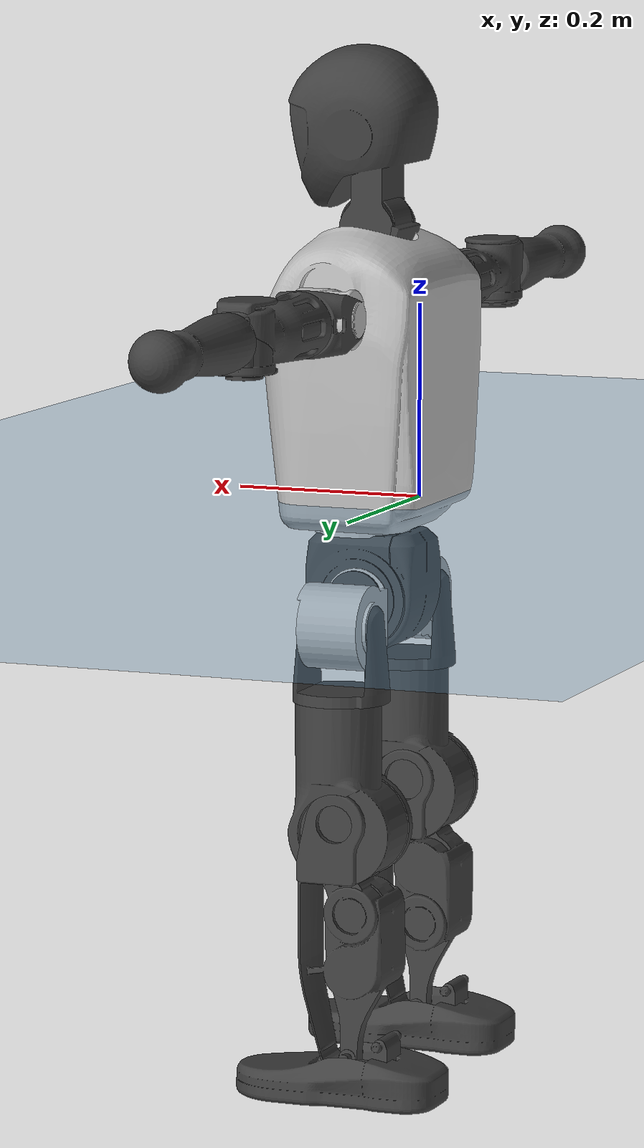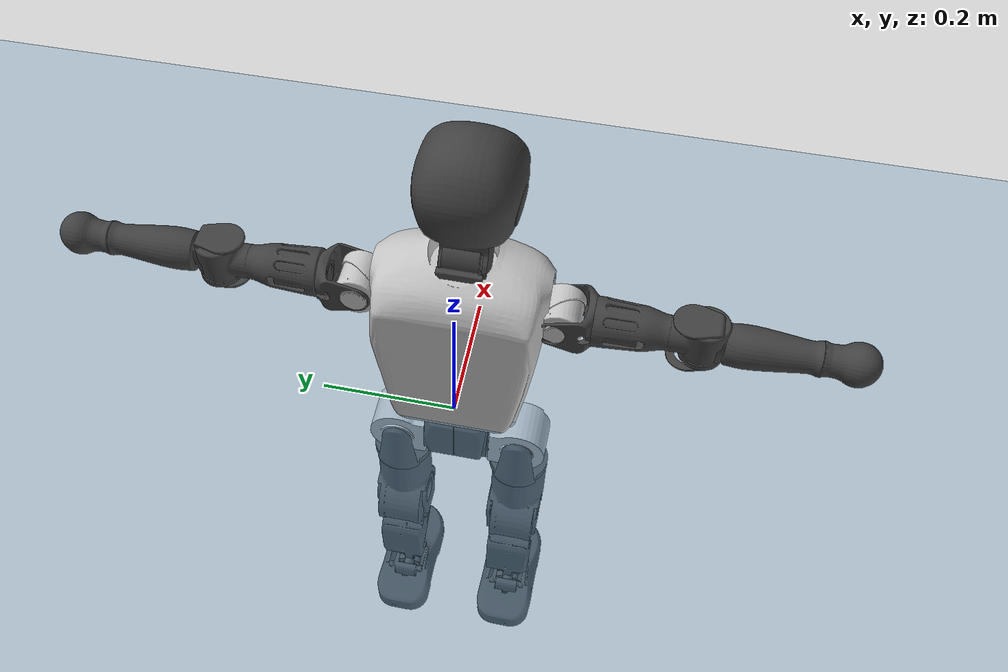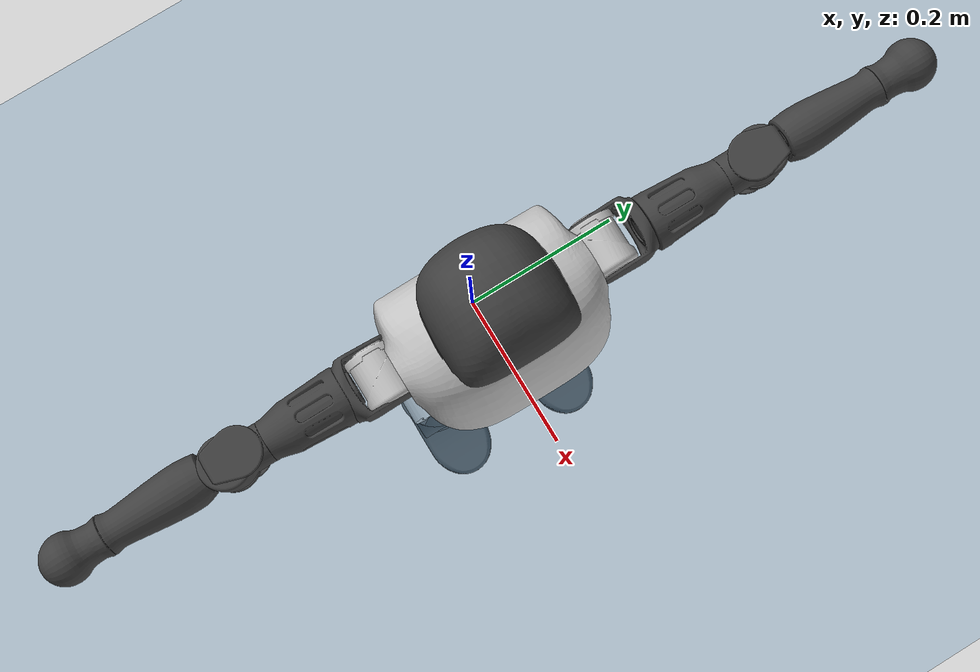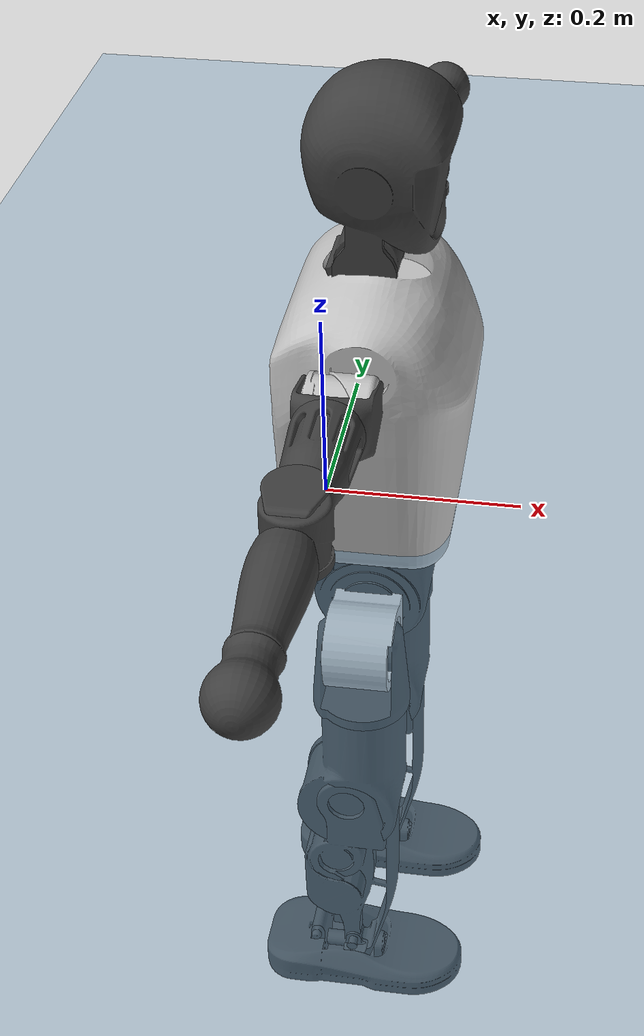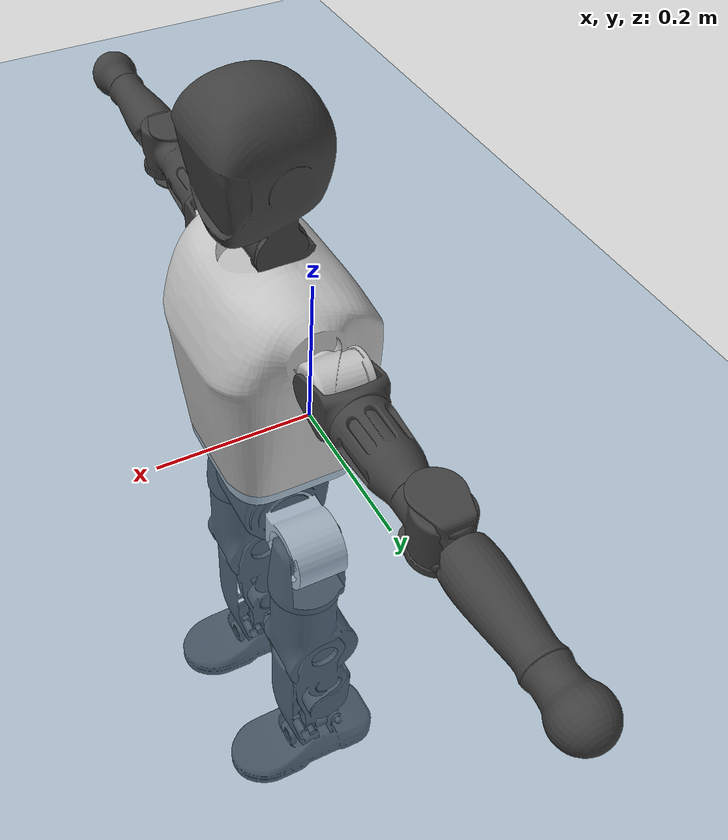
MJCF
<mujoco model="T1">
  <compiler angle="radian" assetdir="assets" balanceinertia="true" inertiafromgeom="false"/>

  <option timestep="0.005" density="1.2" viscosity="2e-05"/>

  <size nkey="1"/>

  <visual>
    <quality shadowsize="8192"/>
    <map shadowclip="0.5"/>
  </visual>

  <default>
    <default class="/">
      <joint armature="0.01" damping="0.01" frictionloss="0.1"/>
      <geom contype="0" conaffinity="0" group="1" solref="-1000 -80"/>
      <site size="0.01 0.005 0.005" group="5"/>
      <general forcelimited="true" biastype="affine" gainprm="25" biasprm="0 -25 -0.6"/>
      <default class="t1">
        <geom rgba="0.25 0.25 0.25 1"/>
        <default class="visual">
          <geom type="mesh" group="2"/>
        </default>
        <default class="collision">
          <geom group="3"/>
        </default>
        <default class="foot">
          <geom size="0.1115 0.05 0.015" type="box" condim="6" group="4" priority="1" solimp="0.015 1 0.015"/>
        </default>
        <default class="reward_collision_sphere">
          <geom group="5" rgba="1 0 0 1"/>
        </default>
      </default>
    </default>
  </default>

  <asset>
    <texture type="skybox" colorspace="auto" name="//unnamed_texture_0" builtin="gradient" rgb1="0.95 0.95 0.95" rgb2="0.95 0.95 0.95" width="100" height="600"/>
    <texture type="2d" colorspace="auto" name="texplane" builtin="checker" rgb1="0.345 0.575 0.748" rgb2="0.345 0.575 0.748" markrgb="1 1 1" width="512" height="512"/>
    <material name="MatPlane" class="/" texture="texplane" texuniform="true" texrepeat="2 2" specular="0.9"/>
    <mesh name="Trunk" class="/" file="Trunk.stl"/>
    <mesh name="H1" class="/" file="H1.stl"/>
    <mesh name="H2" class="/" file="H2.stl"/>
    <mesh name="AL1" class="/" file="AL1.stl"/>
    <mesh name="AL2" class="/" file="AL2.stl"/>
    <mesh name="AL3" class="/" file="AL3.stl"/>
    <mesh name="left_hand_link" class="/" file="left_hand_link.stl"/>
    <mesh name="AR1" class="/" file="AR1.stl"/>
    <mesh name="AR2" class="/" file="AR2.stl"/>
    <mesh name="AR3" class="/" file="AR3.stl"/>
    <mesh name="right_hand_link" class="/" file="right_hand_link.stl"/>
    <mesh name="Waist" class="/" file="Waist.stl"/>
    <mesh name="Hip_Pitch_Left" class="/" file="Hip_Pitch_Left.stl"/>
    <mesh name="Hip_Roll_Left" class="/" file="Hip_Roll_Left.stl"/>
    <mesh name="Hip_Yaw_Left" class="/" file="Hip_Yaw_Left.stl"/>
    <mesh name="Shank_Left" class="/" file="Shank_Left.stl"/>
    <mesh name="Ankle_Cross_Left" class="/" file="Ankle_Cross_Left.stl"/>
    <mesh name="left_foot_link" class="/" file="left_foot_link.stl"/>
    <mesh name="Hip_Pitch_Right" class="/" file="Hip_Pitch_Right.stl"/>
    <mesh name="Hip_Roll_Right" class="/" file="Hip_Roll_Right.stl"/>
    <mesh name="Hip_Yaw_Right" class="/" file="Hip_Yaw_Right.stl"/>
    <mesh name="Shank_Right" class="/" file="Shank_Right.stl"/>
    <mesh name="Ankle_Cross_Right" class="/" file="Ankle_Cross_Right.stl"/>
    <mesh name="right_foot_link" class="/" file="right_foot_link.stl"/>
  </asset>

  <worldbody>
    <geom name="floor" class="/" size="100 100 0.125" type="plane" group="0" material="MatPlane"/>
    <light name="toplight_shadow" class="/" pos="0 0 5" dir="0.0990148 0.0990148 -0.990148" type="directional" ambient="0.04 0.04 0.04" diffuse="0.55 0.55 0.55" specular="0.12 0.12 0.12"/>
    <light name="toplight_fill" class="/" pos="0 0 5" dir="0.0990148 0.0990148 -0.990148" type="directional" castshadow="false" ambient="0.04 0.04 0.04" diffuse="0.3 0.3 0.3" specular="0.08 0.08 0.08"/>
    <body name="trunk" childclass="t1" pos="3.86096e-05 4.87243e-05 0.00270066" quat="1 2.36163e-05 -0.000389676 0.00019153">
      <inertial pos="0.044872 0.00032818 0.0947611" quat="0.9999 -0.00194019 -0.0131889 -0.00463027" mass="7.36955" diaginertia="0.0319648 0.0430373 0.0310602"/>
      <joint name="//unnamed_joint_0" type="free" armature="0" damping="0" frictionloss="0"/>
      <geom name="//unnamed_geom_1" class="visual" rgba="0.76 0.76 0.76 1" mesh="Trunk"/>
      <geom name="//unnamed_geom_2" class="collision" size="0.0651621 0.0868828 0.130324" pos="0.0489627 0 0.107713" type="box"/>
      <geom name="//unnamed_geom_3" class="reward_collision_sphere" size="0.0999152" pos="0.0489627 0 0.0897612"/>
      <geom name="//unnamed_geom_4" class="reward_collision_sphere" size="0.0130324" pos="0.0489627 0.0758903 0"/>
      <geom name="//unnamed_geom_5" class="reward_collision_sphere" size="0.0130324" pos="0.0489627 -0.0758903 0"/>
      <geom name="//unnamed_geom_6" class="reward_collision_sphere" size="0.0130324" pos="0.0489627 0.0955325 0.16157"/>
      <geom name="//unnamed_geom_7" class="reward_collision_sphere" size="0.0130324" pos="0.0489627 -0.0955325 0.16157"/>
      <site name="imu" pos="0.012095 -0.0137578 0.00338109" size="0.00868828"/>
      <camera name="track" pos="0 -1.78565 0" quat="0.707107 0.707107 0 0" mode="trackcom"/>
      <camera name="ego_camera" pos="0.0995575 0 0.376997" quat="-0.5 -0.5 0.5 0.5"/>
      <body name="H1" pos="0.0492649 -0.00232488 0.217589" quat="1 -7.17143e-05 0.000106679 -0.000771448">
        <inertial pos="-0.00129191 -0.000493325 0.0525615" quat="0.762907 -0.0134566 0.000798997 0.646367" mass="0.291457" diaginertia="9.09788e-05 0.000126602 9.06943e-05"/>
        <joint name="AAHead_yaw" pos="0 0 0" axis="0.00100759 -5.29118e-05 0.999999" stiffness="0.0125002" range="-1.55918 1.60951" armature="0.00841174" damping="0.00665871" frictionloss="0.0892197"/>
        <geom name="//unnamed_geom_8" class="visual" mesh="H1"/>
        <body name="H2" pos="-0.000235083 -0.00278954 0.0562756" quat="1 -7.93334e-05 0.000208521 -6.18999e-06">
          <inertial pos="0.00812957 0.00351926 0.0905636" quat="0.988423 0.106329 -0.0746582 -0.078361" mass="0.427673" diaginertia="0.00074162 0.00109694 0.00102055"/>
          <joint name="Head_pitch" pos="0 0 0" axis="6.73082e-05 -0.999995 -0.00319618" stiffness="0.00392296" range="-1.22274 0.39447" armature="0.00750725" damping="0" frictionloss="0.0874343"/>
          <geom name="//unnamed_geom_9" class="visual" mesh="H2"/>
          <geom name="//unnamed_geom_10" class="collision" size="0.0695062" pos="0.00816045 0 0.0987373"/>
          <geom name="//unnamed_geom_11" class="reward_collision_sphere" size="0.0781945" pos="0.0163209 0 0.0897612"/>
        </body>
      </body>
      <body name="AL1" pos="0.0466864 0.0957657 0.195047" quat="1 0.000102919 0.00061717 -8.78373e-05">
        <inertial pos="0.00029394 0.0411157 0.00259671" quat="0.498405 0.495696 -0.50848 0.497318" mass="0.353757" diaginertia="0.000504759 0.000740733 0.000173436"/>
        <joint name="Left_Shoulder_Pitch" pos="0 0 0" axis="-0.00160283 0.999994 0.00310028" range="-3.36394 1.17337" armature="0.0082544" damping="0.00213879" frictionloss="0.088378"/>
        <geom name="//unnamed_geom_12" class="visual" rgba="0.76 0.76 0.76 1" mesh="AL1"/>
        <body name="AL2" pos="0.00101495 0.0456135 -0.000928221" quat="0.999999 -0.000591694 -0.00051407 0.00104424">
          <inertial pos="0.00402082 0.0331632 -0.00276492" quat="0.491105 0.508026 -0.48675 0.513614" mass="0.111482" diaginertia="0.000150874 0.000209263 0.000107713"/>
          <joint name="Left_Shoulder_Roll" pos="0 0 0" axis="-1 2.58667e-05 0.000162747" range="-1.618 1.75538" armature="0.00929786" damping="0" frictionloss="0.0858867"/>
          <geom name="//unnamed_geom_13" class="visual" mesh="AL2"/>
          <body name="AL3" pos="0.00342348 0.0573722 0.000421389" quat="0.999999 -0.000535997 0.000828721 -0.000271661">
            <inertial pos="-0.00152935 0.0756664 0.000325828" quat="0.701997 0.712074 -0.0102519 -0.00674196" mass="0.690191" diaginertia="0.00483296 0.00750679 0.000367883"/>
            <joint name="Left_Elbow_Pitch" pos="0 0 0" axis="-0.00232408 -0.999997 -0.000542251" range="-2.29582 2.28144" armature="0.00884192" damping="0.0105309" frictionloss="0.0893415"/>
            <geom name="//unnamed_geom_14" class="visual" mesh="AL3"/>
            <geom name="//unnamed_geom_15" class="collision" size="0.0260648 0.0651621" pos="0 0.0446413 0" quat="0.707105 0.707108 0 0" type="cylinder"/>
            <geom name="//unnamed_geom_16" class="reward_collision_sphere" size="0.0312778"/>
            <body name="left_hand_link" pos="0.000559922 0.134141 0.00334712" quat="0.999999 -0.000287983 0.0013169 9.69768e-05">
              <inertial pos="-2.77911e-06 0.0969615 -0.00216925" quat="0.700958 0.713134 -0.00823621 -0.00544858" mass="0.207849" diaginertia="0.00292189 0.00450578 0.000119782"/>
              <joint name="Left_Elbow_Yaw" pos="0 0 0" axis="-0.00241966 -0.0160644 0.999868" stiffness="0.000610764" range="-2.44854 0.0500282" armature="0.00878246" damping="0.00158214" frictionloss="0.0973831"/>
              <geom name="//unnamed_geom_17" class="visual" mesh="left_hand_link"/>
              <geom name="//unnamed_geom_18" class="collision" size="0.0260648 0.0760225" pos="0 0.116068 0" quat="0.707105 0.707108 0 0" type="cylinder"/>
              <geom name="//unnamed_geom_19" class="reward_collision_sphere" size="0.0434414"/>
              <geom name="//unnamed_geom_20" class="reward_collision_sphere" size="0.030409" pos="0 0.098211 0"/>
              <geom name="//unnamed_geom_21" class="reward_collision_sphere" size="0.030409" pos="0 0.191958 0"/>
            </body>
          </body>
        </body>
      </body>
      <body name="AR1" pos="0.0439882 -0.0913792 0.195782" quat="1 -0.000394147 0.000264591 0.000297828">
        <inertial pos="-0.00138231 -0.0395776 -0.00131903" quat="0.504221 0.495815 -0.503071 0.496838" mass="0.356453" diaginertia="0.000500419 0.000747895 0.000171485"/>
        <joint name="Right_Shoulder_Pitch" pos="0 0 0" axis="0.000365434 -0.999971 -0.00763714" stiffness="0.0156644" range="-1.17514 3.33199" armature="0.00855261" damping="0.0214909" frictionloss="0.0882123"/>
        <geom name="//unnamed_geom_22" class="visual" rgba="0.76 0.76 0.76 1" mesh="AR1"/>
        <body name="AR2" pos="-0.00278202 -0.0385265 0.000466274" quat="1 -0.000779974 0.000165189 -0.000310914">
          <inertial pos="0.000912158 -0.0333114 -0.00218305" quat="0.506592 0.490786 -0.508228 0.494163" mass="0.104149" diaginertia="0.000140995 0.000191333 0.000104246"/>
          <joint name="Right_Shoulder_Roll" pos="0 0 0" axis="-0.999968 0.00161185 -0.00784498" stiffness="0.0113863" range="-1.71006 1.51823" armature="0.0089263" damping="0.00700047" frictionloss="0.0750888"/>
          <geom name="//unnamed_geom_23" class="visual" mesh="AR2"/>
          <body name="AR3" pos="-0.00162942 -0.0515888 0.00255069" quat="1 -0.000283972 0.000241885 -0.000217536">
            <inertial pos="-0.000496075 -0.0755543 -1.29352e-05" quat="0.71371 0.700402 -0.00531241 -0.00511294" mass="0.654892" diaginertia="0.00455563 0.00744233 0.000364296"/>
            <joint name="Right_Elbow_Pitch" pos="0 0 0" axis="-3.07653e-05 1 -7.34605e-05" stiffness="0.0116029" range="-2.27143 2.26121" armature="0.0091458" damping="0.0161889" frictionloss="0.0982245"/>
            <geom name="//unnamed_geom_24" class="visual" mesh="AR3"/>
            <geom name="//unnamed_geom_25" class="collision" size="0.0260648 0.0651621" pos="0 -0.0446413 0" quat="0.707105 0.707108 0 0" type="cylinder"/>
            <geom name="//unnamed_geom_26" class="reward_collision_sphere" size="0.0312778"/>
            <body name="right_hand_link" pos="-0.00289414 -0.129729 -0.000721488" quat="1 -0.000909824 0.00012964 -0.000123472">
              <inertial pos="-0.00101102 -0.0977853 0.00334263" quat="0.701582 0.712492 -0.0100769 -0.00598834" mass="0.205061" diaginertia="0.0027799 0.00449847 0.000121738"/>
              <joint name="Right_Elbow_Yaw" pos="0 0 0" axis="0.00336066 0.00186026 0.999993" stiffness="0.00432934" range="-0.0550174 2.42034" armature="0.00987917" damping="0.0103546" frictionloss="0.0877999"/>
              <geom name="//unnamed_geom_27" class="visual" mesh="right_hand_link"/>
              <geom name="//unnamed_geom_28" class="collision" size="0.0260648 0.0760225" pos="0 -0.116068 0" quat="0.707105 0.707108 0 0" type="cylinder"/>
              <geom name="//unnamed_geom_29" class="reward_collision_sphere" size="0.0434414"/>
              <geom name="//unnamed_geom_30" class="reward_collision_sphere" size="0.030409" pos="0 -0.098211 0"/>
              <geom name="//unnamed_geom_31" class="reward_collision_sphere" size="0.030409" pos="0 -0.191958 0"/>
            </body>
          </body>
        </body>
      </body>
      <body name="Waist" pos="0.0513935 -0.000494333 -0.106214" quat="1 -5.13436e-05 -4.27467e-05 -1.41855e-05">
        <inertial pos="0.00399165 -0.00101137 0.00591308" quat="0.982794 0.00105054 -0.184694 0.00151017" mass="1.68216" diaginertia="0.00187719 0.00280867 0.00263401"/>
        <joint name="Waist" pos="0 0 0" axis="6.93338e-06 0.00189434 0.999998" range="-1.52279 1.58542" armature="0.00760664" damping="0.0130346" frictionloss="0.0905001"/>
        <geom name="//unnamed_geom_32" class="visual" mesh="Waist"/>
        <body name="Hip_Pitch_Left" pos="-0.00169875 0.0967361 -0.00100005" quat="0.999999 0.000835307 -0.000688031 0.000477098">
          <inertial pos="-0.000782584 -0.00420708 -0.0161269" quat="0.974961 0.221975 0.0131544 0.00223755" mass="0.659313" diaginertia="0.000639949 0.000827961 0.000712775"/>
          <joint name="Left_Hip_Pitch" pos="0 0 0" axis="4.52443e-05 1 6.49964e-05" stiffness="0.0107674" range="-1.8048 1.61794" armature="0.00876135" damping="0.0162719" frictionloss="0.0866044"/>
          <geom name="//unnamed_geom_33" class="visual" rgba="0.76 0.76 0.76 1" mesh="Hip_Pitch_Left"/>
          <body name="Hip_Roll_Left" pos="0.00137018 -0.000388431 -0.0204154" quat="0.999999 -0.00089931 0.000204113 0.000654171">
            <inertial pos="0.000121929 -0.000284745 -0.0479102" quat="0.707321 -0.00648234 -0.00340583 0.706855" mass="0.253186" diaginertia="0.000636004 0.000835912 0.000291184"/>
            <joint name="Left_Hip_Roll" pos="0 0 0" axis="-0.999999 0.000812314 0.00151675" range="-1.57791 0.208178" armature="0.00853211" damping="0.0162021" frictionloss="0.0986406"/>
            <geom name="//unnamed_geom_34" class="visual" mesh="Hip_Roll_Left"/>
            <geom name="//unnamed_geom_35" class="reward_collision_sphere" size="0.0477855"/>
            <body name="Hip_Yaw_Left" pos="0.000709973 -1.87104e-05 -0.0757034" quat="1 -0.000450632 0.000547935 -0.000698356">
              <inertial pos="-0.004879 -0.00102603 -0.0807169" quat="0.692862 -0.0276455 -0.0406119 0.719395" mass="1.39785" diaginertia="0.00919155 0.013932 0.00154086"/>
              <joint name="Left_Hip_Yaw" pos="0 0 0" axis="-0.00315506 0.0113206 -0.999931" range="-0.997885 0.979078" armature="0.00848432" damping="0.0108876" frictionloss="0.0868832"/>
              <geom name="//unnamed_geom_36" class="visual" mesh="Hip_Yaw_Left"/>
              <geom name="//unnamed_geom_37" class="collision" size="0.0434414 0.0695062" type="cylinder"/>
              <body name="Shank_Left" pos="-0.0116514 -0.000182659 -0.122344" quat="1 7.05702e-05 -0.000597683 -0.000482897">
                <inertial pos="-0.00532919 0.000763893 -0.11226" quat="0.996935 -0.00511328 -0.0346492 0.0699522" mass="1.15608" diaginertia="0.0124336 0.0203909 0.00110491"/>
                <joint name="Left_Knee_Pitch" pos="0 0 0" axis="-0.00159898 0.999999 0.000207717" stiffness="0.00364223" range="0.00754805 2.34823" armature="0.00860249" damping="0.0159339" frictionloss="0.0989759"/>
                <geom name="//unnamed_geom_38" class="visual" mesh="Shank_Left"/>
                <geom name="//unnamed_geom_39" class="collision" size="0.0434414 0.0651621" pos="0 0 -0.107713" type="cylinder"/>
                <geom name="//unnamed_geom_40" class="reward_collision_sphere" size="0.0564738"/>
                <body name="Ankle_Cross_Left" pos="-0.00144034 -0.000990653 -0.25295" quat="1 0.000385835 0.000714093 0.000514016">
                  <inertial pos="-0.00190105 0.00155867 -0.00959335" quat="0.442806 0.551289 0.550232 0.444128" mass="0.0488461" diaginertia="1.12274e-05 1.46072e-05 6.66966e-06"/>
                  <joint name="Left_Ankle_Pitch" pos="0 0 0" axis="-0.00459176 0.999957 -0.00804275" range="-0.913787 0.388095" armature="0.00795516" damping="0.0127386" frictionloss="0.0988877"/>
                  <geom name="//unnamed_geom_41" class="visual" mesh="Ankle_Cross_Left"/>
                  <body name="left_foot_link" pos="0.00199711 -0.000238143 -0.0142581" quat="1 -3.325e-05 0.000118334 -6.46169e-05">
                    <inertial pos="-0.000275487 -0.00266439 -0.00898342" quat="0.00135933 0.620376 -0.0010982 0.784303" mass="0.44359" diaginertia="0.00100964 0.00136076 0.00127732"/>
                    <joint name="Left_Ankle_Roll" pos="0 0 0" axis="-0.999993 -0.00299 0.00232936" range="-0.484676 0.427985" armature="0.00864125" damping="0.00848282" frictionloss="0.0828875"/>
                    <geom name="//unnamed_geom_42" class="visual" mesh="left_foot_link"/>
                    <geom name="left_foot" class="foot" size="0.0987922 0.0436235 0.0142147" pos="0.00816045 0 -0.0134642"/>
                    <geom name="//unnamed_geom_44" class="reward_collision_sphere" size="0.0451791" pos="0.00816045 0 -0.0134642"/>
                    <geom name="//unnamed_geom_45" class="reward_collision_sphere" size="0.0260648" pos="0.0775243 -0.020535 -0.0134642"/>
                    <geom name="//unnamed_geom_46" class="reward_collision_sphere" size="0.0260648" pos="-0.0571231 -0.020535 -0.0134642"/>
                    <site name="left_foot" class="foot" pos="0.00816045 0 -0.0134642" size="0.00868828"/>
                  </body>
                </body>
              </body>
            </body>
          </body>
        </body>
        <body name="Hip_Pitch_Right" pos="-0.000254973 -0.0955312 0.00191522" quat="0.999999 -0.000807173 -0.000891541 -2.00768e-05">
          <inertial pos="0.000433327 0.00663137 -0.0133462" quat="0.971782 -0.234928 0.013645 -0.0162037" mass="0.666214" diaginertia="0.000648967 0.000828281 0.000748158"/>
          <joint name="Right_Hip_Pitch" pos="0 0 0" axis="-0.00330046 -0.999917 0.0124366" range="-1.58002 1.81646" armature="0.00979491" damping="0.0110828" frictionloss="0.0947567"/>
          <geom name="//unnamed_geom_47" class="visual" rgba="0.76 0.76 0.76 1" mesh="Hip_Pitch_Right"/>
          <body name="Hip_Roll_Right" pos="0.00116163 -0.00110395 -0.0156895" quat="0.999999 0.00094457 0.000696033 -0.000260906">
            <inertial pos="0.00370583 -0.000198834 -0.0504705" quat="0.71326 -0.0162438 -0.00602774 0.700685" mass="0.244329" diaginertia="0.000591588 0.00082651 0.000289202"/>
            <joint name="Right_Hip_Roll" pos="0 0 0" axis="-0.99999 0.0042302 0.00174943" stiffness="0.00891639" range="-0.192216 1.62762" armature="0.00836602" damping="0.00454285" frictionloss="0.0865824"/>
            <geom name="//unnamed_geom_48" class="visual" mesh="Hip_Roll_Right"/>
            <geom name="//unnamed_geom_49" class="reward_collision_sphere" size="0.0477855"/>
            <body name="Hip_Yaw_Right" pos="7.82415e-05 -0.00249548 -0.0728766" quat="0.999999 -0.000150006 0.00144729 -0.000404453">
              <inertial pos="-0.00310416 0.000711325 -0.0802544" quat="0.712755 -0.02033 -0.0327141 0.700355" mass="1.48011" diaginertia="0.00997091 0.015287 0.00159145"/>
              <joint name="Right_Hip_Yaw" pos="0 0 0" axis="0.00477979 -0.00551464 -0.999973" range="-1.01904 0.960573" armature="0.00883938" damping="0.00664101" frictionloss="0.0751089"/>
              <geom name="//unnamed_geom_50" class="visual" mesh="Hip_Yaw_Right"/>
              <geom name="//unnamed_geom_51" class="collision" size="0.0434414 0.0695062" type="cylinder"/>
              <body name="Shank_Right" pos="-0.0139595 0.00197955 -0.121312" quat="0.999999 -0.000193494 -0.000897277 -0.00090088">
                <inertial pos="-0.00209839 0.00149606 -0.108884" quat="0.999224 -0.00262133 -0.0230343 -0.0318499" mass="1.22562" diaginertia="0.0127539 0.0194054 0.00112217"/>
                <joint name="Right_Knee_Pitch" pos="0 0 0" axis="-0.00299666 -0.999992 0.00260907" stiffness="0.00756647" range="-2.33004 -0.0114408" armature="0.0083968" damping="0.0186867" frictionloss="0.0910986"/>
                <geom name="//unnamed_geom_52" class="visual" mesh="Shank_Right"/>
                <geom name="//unnamed_geom_53" class="collision" size="0.0434414 0.0651621" pos="0 0 -0.107713" type="cylinder"/>
                <geom name="//unnamed_geom_54" class="reward_collision_sphere" size="0.0564738"/>
                <body name="Ankle_Cross_Right" pos="-0.00114812 -0.00149789 -0.253426" quat="0.999999 -0.00111239 0.000607508 0.000647437">
                  <inertial pos="-0.00285657 0.000288766 -0.00697196" quat="0.446825 0.548678 0.550354 0.443182" mass="0.0447808" diaginertia="1.01741e-05 1.4103e-05 6.4815e-06"/>
                  <joint name="Right_Ankle_Pitch" pos="0 0 0" axis="0.00977671 -0.999926 0.00727995" range="-0.349415 0.820398" armature="0.00985866" damping="0" frictionloss="0.0765839"/>
                  <geom name="//unnamed_geom_55" class="visual" mesh="Ankle_Cross_Right"/>
                  <body name="right_foot_link" pos="0.00234577 -0.0018626 -0.00850788" quat="1 0.000185351 -0.00047688 -0.000702381">
                    <inertial pos="-0.000651504 -6.72584e-05 -0.0108996" quat="-0.00148206 0.624725 -0.000860961 0.780843" mass="0.46857" diaginertia="0.000955016 0.00134794 0.00126601"/>
                    <joint name="Right_Ankle_Roll" pos="0 0 0" axis="-0.999894 -0.00738156 0.0125769" stiffness="4.75343e-05" range="-0.391642 0.466285" armature="0.00744623" damping="0.00559054" frictionloss="0.083764"/>
                    <geom name="//unnamed_geom_56" class="visual" mesh="right_foot_link"/>
                    <geom name="right_foot" class="foot" size="0.0952255 0.044229 0.0134947" pos="0.00816045 0 -0.0134642"/>
                    <geom name="//unnamed_geom_58" class="reward_collision_sphere" size="0.0347531"/>
                    <geom name="//unnamed_geom_59" class="reward_collision_sphere" size="0.0260648" pos="0.00816045 0 -0.0134642"/>
                    <geom name="//unnamed_geom_60" class="reward_collision_sphere" size="0.0260648" pos="0.0775243 0.020535 -0.0134642"/>
                    <geom name="//unnamed_geom_61" class="reward_collision_sphere" size="0.0260648" pos="-0.0571231 0.020535 -0.0134642"/>
                    <site name="right_foot" class="foot" pos="0.00816045 0 -0.0134642" size="0.00868828"/>
                  </body>
                </body>
              </body>
            </body>
          </body>
        </body>
      </body>
    </body>
  </worldbody>

  <contact>
    <pair class="/" geom1="floor" geom2="left_foot" name="//unnamed_contact_0"/>
    <pair class="/" geom1="floor" geom2="right_foot" name="//unnamed_contact_1"/>
  </contact>

  <actuator>
    <general name="AAHead_yaw" class="/" joint="AAHead_yaw" forcerange="-5.79621 5.79621" gainprm="23.456" biasprm="0 -23.456 -0.523036"/>
    <general name="Head_pitch" class="/" joint="Head_pitch" forcerange="-5.85427 5.85427" gainprm="23.456" biasprm="0 -23.456 -0.523036"/>
    <general name="Left_Shoulder_Pitch" class="/" joint="Left_Shoulder_Pitch" forcerange="-15.1726 15.1726" gainprm="23.456" biasprm="0 -23.456 -0.523036"/>
    <general name="Left_Shoulder_Roll" class="/" joint="Left_Shoulder_Roll" forcerange="-15.4699 15.4699" gainprm="23.456" biasprm="0 -23.456 -0.523036"/>
    <general name="Left_Elbow_Pitch" class="/" joint="Left_Elbow_Pitch" forcerange="-17.3262 17.3262" gainprm="23.456" biasprm="0 -23.456 -0.523036"/>
    <general name="Left_Elbow_Yaw" class="/" joint="Left_Elbow_Yaw" forcerange="-16.3455 16.3455" gainprm="23.456" biasprm="0 -23.456 -0.523036"/>
    <general name="Right_Shoulder_Pitch" class="/" joint="Right_Shoulder_Pitch" forcerange="-15.3625 15.3625" gainprm="23.456" biasprm="0 -23.456 -0.523036"/>
    <general name="Right_Shoulder_Roll" class="/" joint="Right_Shoulder_Roll" forcerange="-15.6832 15.6832" gainprm="23.456" biasprm="0 -23.456 -0.523036"/>
    <general name="Right_Elbow_Pitch" class="/" joint="Right_Elbow_Pitch" forcerange="-15.868 15.868" gainprm="23.456" biasprm="0 -23.456 -0.523036"/>
    <general name="Right_Elbow_Yaw" class="/" joint="Right_Elbow_Yaw" forcerange="-17.1808 17.1808" gainprm="23.456" biasprm="0 -23.456 -0.523036"/>
    <general name="Waist" class="/" joint="Waist" forcerange="-27.3837 27.3837" gainprm="23.456" biasprm="0 -23.456 -0.523036"/>
    <general name="Left_Hip_Pitch" class="/" joint="Left_Hip_Pitch" forcerange="-35.5433 35.5433" gainprm="23.456" biasprm="0 -23.456 -0.523036"/>
    <general name="Left_Hip_Roll" class="/" joint="Left_Hip_Roll" forcerange="-25.1124 25.1124" gainprm="23.456" biasprm="0 -23.456 -0.523036"/>
    <general name="Left_Hip_Yaw" class="/" joint="Left_Hip_Yaw" forcerange="-26.0725 26.0725" gainprm="23.456" biasprm="0 -23.456 -0.523036"/>
    <general name="Left_Knee_Pitch" class="/" joint="Left_Knee_Pitch" forcerange="-57.0659 57.0659" gainprm="23.456" biasprm="0 -23.456 -0.523036"/>
    <general name="Left_Ankle_Pitch" class="/" joint="Left_Ankle_Pitch" forcerange="-16.6623 16.6623" gainprm="23.456" biasprm="0 -23.456 -0.523036"/>
    <general name="Left_Ankle_Roll" class="/" joint="Left_Ankle_Roll" forcerange="-13.1896 13.1896" gainprm="23.456" biasprm="0 -23.456 -0.523036"/>
    <general name="Right_Hip_Pitch" class="/" joint="Right_Hip_Pitch" forcerange="-42.9793 42.9793" gainprm="23.456" biasprm="0 -23.456 -0.523036"/>
    <general name="Right_Hip_Roll" class="/" joint="Right_Hip_Roll" forcerange="-25.1644 25.1644" gainprm="23.456" biasprm="0 -23.456 -0.523036"/>
    <general name="Right_Hip_Yaw" class="/" joint="Right_Hip_Yaw" forcerange="-26.0091 26.0091" gainprm="23.456" biasprm="0 -23.456 -0.523036"/>
    <general name="Right_Knee_Pitch" class="/" joint="Right_Knee_Pitch" forcerange="-56.3979 56.3979" gainprm="23.456" biasprm="0 -23.456 -0.523036"/>
    <general name="Right_Ankle_Pitch" class="/" joint="Right_Ankle_Pitch" forcerange="-16.6857 16.6857" gainprm="23.456" biasprm="0 -23.456 -0.523036"/>
    <general name="Right_Ankle_Roll" class="/" joint="Right_Ankle_Roll" forcerange="-11.7666 11.7666" gainprm="23.456" biasprm="0 -23.456 -0.523036"/>
  </actuator>

  <sensor>
    <gyro site="imu" name="imu_angular_velocity"/>
    <velocimeter site="imu" name="imu_linear_velocity"/>
    <framelinvel objtype="site" objname="left_foot" name="left_foot_global_linear_velocity"/>
    <framelinvel objtype="site" objname="right_foot" name="right_foot_global_linear_velocity"/>
  </sensor>

  <keyframe>
    <key name="home" qpos="0 0 0.6385 1 0 0 0 0 0 0 1.4 0 -0.4 0 -1.4 0 0.4 0 -0.4 0 0 0.8 -0.4 0 0.4 0 0 -0.8 0.4 0"/>
  </keyframe>
</mujoco>
